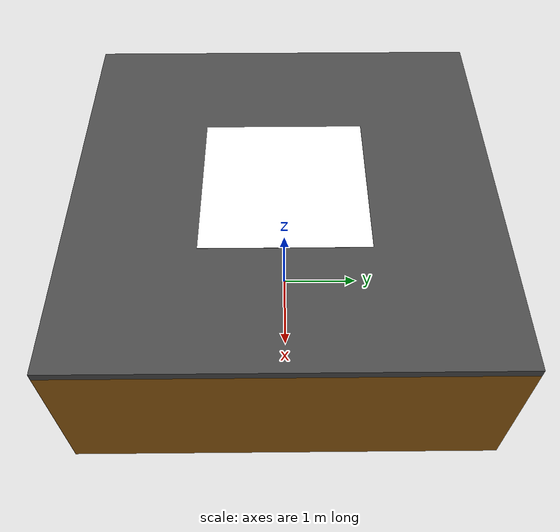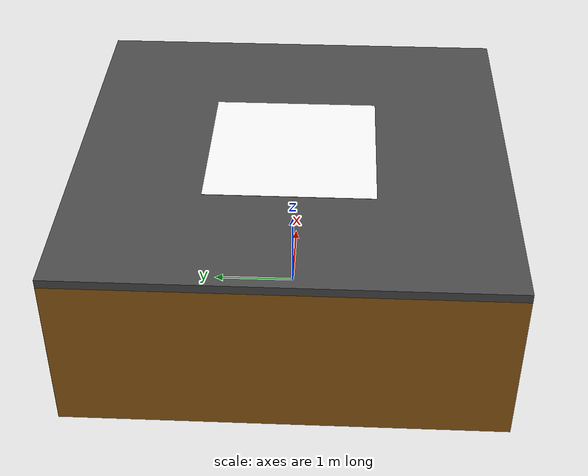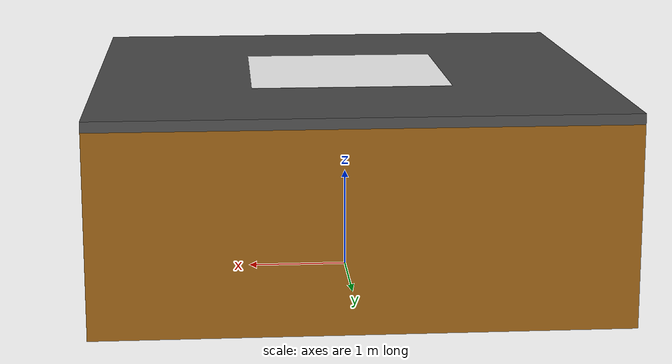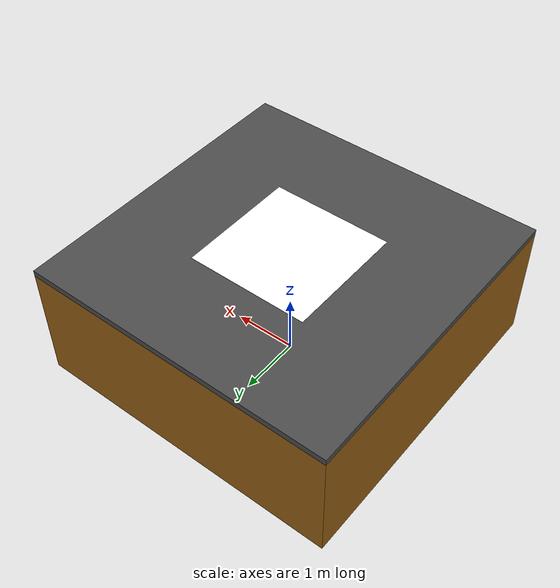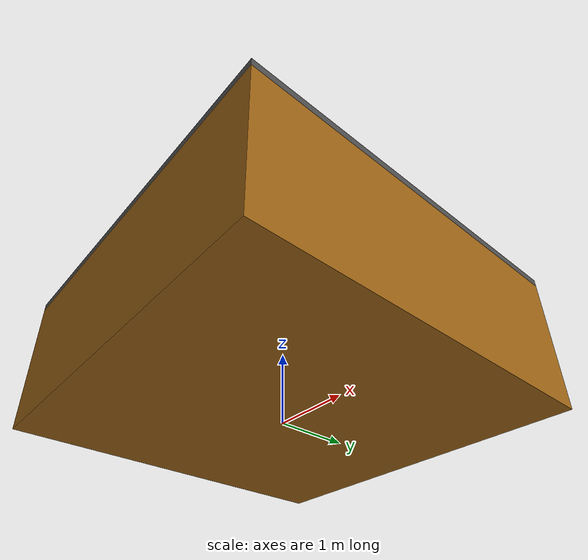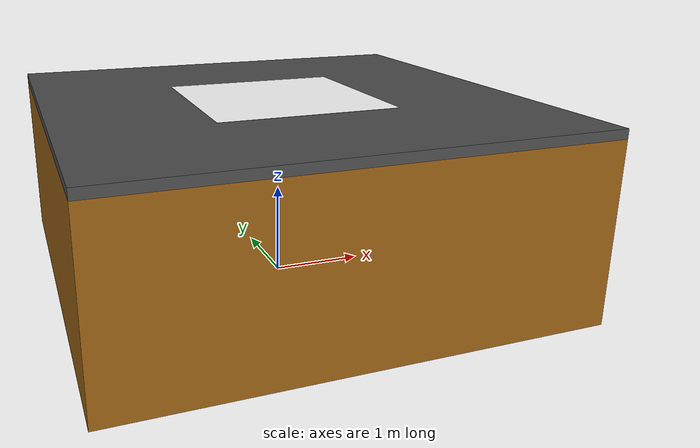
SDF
<?xml version="1.0" encoding="UTF-8"?>
<sdf version="1.9">
  <model name="flat_platform">
    <link name="platform_link">
      <visual name="body_visual">
        <pose>0 0 -1.0 0 0 0</pose>
        <geometry>
          <box>
            <size>5 5 1.9</size>
          </box>
        </geometry>
        <material>
          <ambient>0.55 0.32 0.05 1</ambient>
          <diffuse>0.6 0.38 0.08 1</diffuse>
          <specular>0.2 0.2 0.2 1</specular>
        </material>
      </visual>
      <collision name="body_collision">
        <pose>0 0 -1.0 0 0 0</pose>
        <geometry>
          <box>
            <size>5 5 1.9</size>
          </box>
        </geometry>
      </collision>
      <visual name="platform_visual">
        <geometry>
          <box>
            <size>5 5 0.1</size>
          </box>
        </geometry>
        <material>
          <ambient>0.3 0.3 0.3 1</ambient>
          <diffuse>0.3 0.3 0.3 1</diffuse>
          <specular>0.1 0.1 0.1 1</specular>
        </material>
      </visual>
      <!-- The proven single-ID texture contains a 60 px quiet zone around a
           400 px code.  A 1.95 m plane therefore renders a 1.50 m marker. -->
      <visual name="aruco_visual">
        <pose>0 0 0.051 0 0 0</pose>
        <geometry>
          <plane>
            <normal>0 0 1</normal>
            <size>1.95 1.95</size>
          </plane>
        </geometry>
        <material>
          <ambient>1 1 1 1</ambient>
          <diffuse>1 1 1 1</diffuse>
          <specular>0 0 0 1</specular>
          <pbr>
            <metal>
              <albedo_map>model://aruco_marker_0/materials/textures/aruco_0.png</albedo_map>
              <metalness>0.0</metalness>
              <roughness>1.0</roughness>
            </metal>
          </pbr>
        </material>
      </visual>
      <collision name="platform_collision">
        <geometry>
          <box>
            <size>5 5 0.1</size>
          </box>
        </geometry>
      </collision>
      <pose>0 0 2 0 0 0</pose>
      <inertial>
          <mass>10000</mass>
          <inertia>
              <ixx>10000</ixx>
              <iyy>10000</iyy>
              <izz>10000</izz>
          </inertia>
      </inertial>
      <sensor name="navsat_sensor" type="navsat">
        <always_on>1</always_on>
        <update_rate>30</update_rate>
      </sensor>
    </link>
    <plugin
      filename="libMovingPlatformController.so"
      name="custom::MovingPlatformController">
      <link_name>platform_link</link_name>
    </plugin>
  </model>
</sdf>
